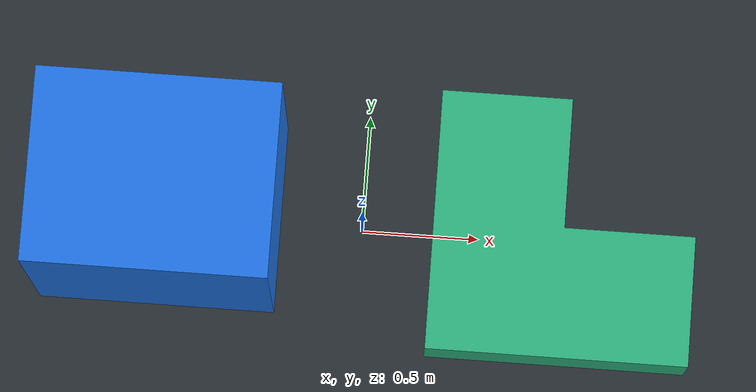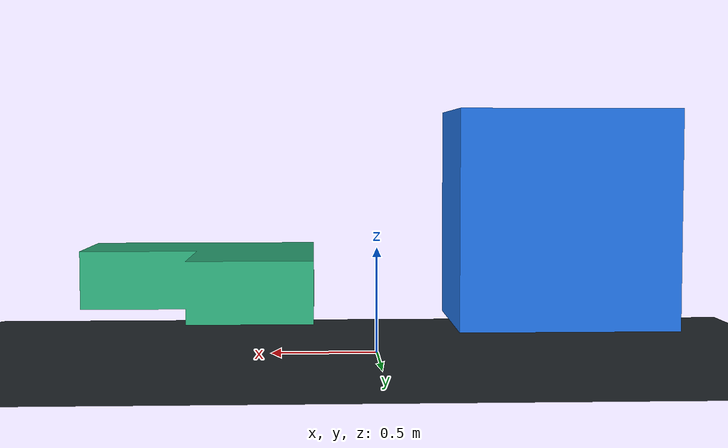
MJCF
<mujoco model="geometry views">
  <option gravity="0 0 0"/>
  <visual><global offwidth="960" offheight="640"/></visual>
  <asset>
    <mesh name="concave" scale=".55 .55 .55"
      vertex="-1 -1 -.25 1 -1 -.25 1 0 -.25 0 0 -.25 0 1 -.25 -1 1 -.25
              -1 -1 .25 1 -1 .25 1 0 .25 0 0 .25 0 1 .25 -1 1 .25"
      face="6 7 8 6 8 9 6 9 10 6 10 11 0 2 1 0 3 2 0 4 3 0 5 4
            0 1 7 0 7 6 1 2 8 1 8 7 2 3 9 2 9 8 3 4 10 3 10 9
            4 5 11 4 11 10 5 0 6 5 6 11"/>
  </asset>
  <worldbody>
    <light pos="1 -3 5" dir="0 .3 -1"/>
    <camera name="demo" pos="3 -5 4" xyaxes=".8575 .5145 0 -.2497 .4162 .8744"/>
    <geom name="floor" type="plane" size="3 2 .1" rgba=".16 .18 .2 1"/>
    <body name="separate" pos="-.85 0 .65">
      <freejoint/>
      <geom name="visual_shell" type="box" size=".5 .4 .5"
        contype="0" conaffinity="0" rgba=".12 .45 .9 1"/>
      <geom name="collision_proxy" type="capsule" size=".27 .25"
        group="3" rgba="0 0 0 0"/>
    </body>
    <body name="shared" pos=".85 0 .35">
      <freejoint/>
      <geom name="shared_mesh" type="mesh" mesh="concave" rgba=".18 .7 .5 1"/>
    </body>
  </worldbody>
</mujoco>
